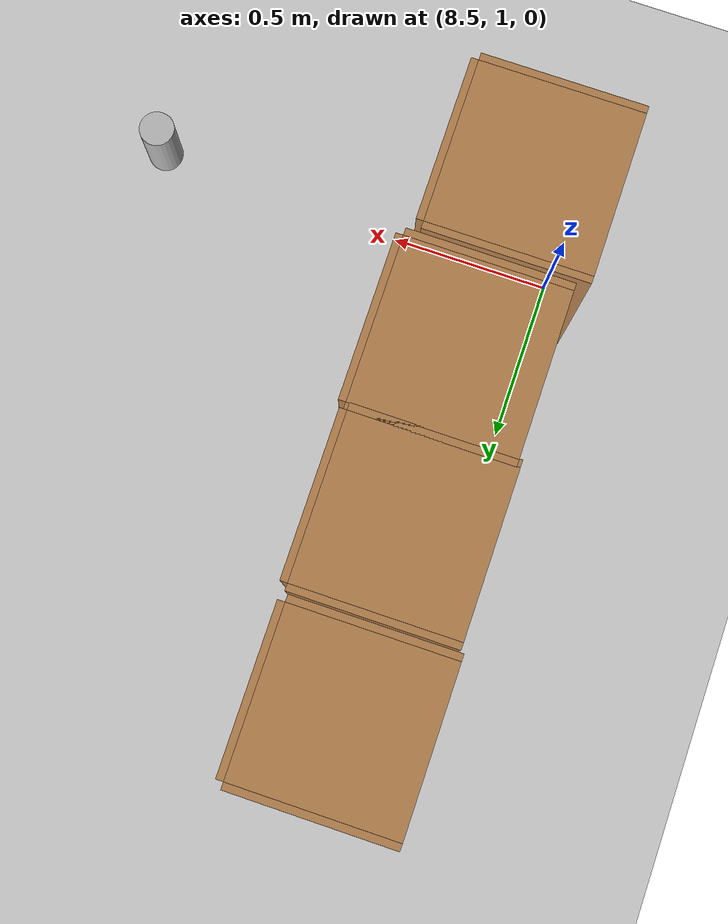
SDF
<sdf version="1.7">
 <world name="default">
  <model name="ground_plane">
   <static>1</static>
   <link name="link">
    <collision name="collision">
     <geometry><plane><normal>0 0 1</normal><size>100 100</size></plane></geometry>
     <surface>
      <contact><collide_bitmask>65535</collide_bitmask></contact>
      <friction><ode><mu>100</mu><mu2>50</mu2></ode></friction>
     </surface>
    </collision>
    <visual name="visual">
     <cast_shadows>0</cast_shadows>
     <geometry><plane><normal>0 0 1</normal><size>100 100</size></plane></geometry>
     <material>
      <script><uri>file://media/materials/scripts/gazebo.material</uri><name>Gazebo/Grey</name></script>
     </material>
    </visual>
   </link>
  </model>
  <model name="cabinet">
   <static>1</static>
   <link name="cabinet_bottom_plate">
    <inertial>
     <pose>0 0 -1 0 -0 0</pose>
     <inertia><ixx>2.05</ixx><ixy>0</ixy><ixz>0</ixz><iyy>2.05</iyy><iyz>0</iyz><izz>2.05</izz></inertia>
     <mass>25</mass>
    </inertial>
    <collision name="cabinet_bottom_plate_geom">
     <pose>0 0 0.01 0 -0 0</pose>
     <geometry><box><size>0.45 0.45 0.02</size></box></geometry>
    </collision>
    <visual name="cabinet_bottom_plate_geom_visual">
     <pose>0 0 0.01 0 -0 0</pose>
     <geometry><box><size>0.45 0.45 0.02</size></box></geometry>
     <material>
      <script><uri>file://media/materials/scripts/gazebo.material</uri><name>Gazebo/Wood</name></script>
     </material>
    </visual>
    <collision name="cabinet_bottom_plate_geom_cabinet_back_plate">
     <pose>0.235 0 0.51 0 -0 0</pose>
     <geometry><box><size>0.02 0.45 1.02</size></box></geometry>
    </collision>
    <visual name="cabinet_bottom_plate_geom_cabinet_back_plate_visual">
     <pose>0.235 0 0.51 0 -0 0</pose>
     <geometry><box><size>0.02 0.45 1.02</size></box></geometry>
     <material>
      <script><uri>file://media/materials/scripts/gazebo.material</uri><name>Gazebo/Wood</name></script>
     </material>
    </visual>
    <collision name="cabinet_bottom_plate_geom_cabinet_left_plate">
     <pose>0 0.235 0.51 0 -0 0</pose>
     <geometry><box><size>0.45 0.02 1.02</size></box></geometry>
    </collision>
    <visual name="cabinet_bottom_plate_geom_cabinet_left_plate_visual">
     <pose>0 0.235 0.51 0 -0 0</pose>
     <geometry><box><size>0.45 0.02 1.02</size></box></geometry>
     <material>
      <script><uri>file://media/materials/scripts/gazebo.material</uri><name>Gazebo/Wood</name></script>
     </material>
    </visual>
    <collision name="cabinet_bottom_plate_geom_cabinet_middle_plate">
     <pose>0 0 0.51 0 -0 0</pose>
     <geometry><box><size>0.45 0.45 0.02</size></box></geometry>
    </collision>
    <visual name="cabinet_bottom_plate_geom_cabinet_middle_plate_visual">
     <pose>0 0 0.51 0 -0 0</pose>
     <geometry><box><size>0.45 0.45 0.02</size></box></geometry>
     <material>
      <script><uri>file://media/materials/scripts/gazebo.material</uri><name>Gazebo/Wood</name></script>
     </material>
    </visual>
    <collision name="cabinet_bottom_plate_geom_cabinet_right_plate">
     <pose>0 -0.235 0.51 0 -0 0</pose>
     <geometry><box><size>0.45 0.02 1.02</size></box></geometry>
    </collision>
    <visual name="cabinet_bottom_plate_geom_cabinet_right_plate_visual">
     <pose>0 -0.235 0.51 0 -0 0</pose>
     <geometry><box><size>0.45 0.02 1.02</size></box></geometry>
     <material>
      <script><uri>file://media/materials/scripts/gazebo.material</uri><name>Gazebo/Wood</name></script>
     </material>
    </visual>
    <collision name="cabinet_bottom_plate_geom_cabinet_top_plate">
     <pose>0 0 1.01 0 -0 0</pose>
     <geometry><box><size>0.45 0.45 0.02</size></box></geometry>
    </collision>
    <visual name="cabinet_bottom_plate_geom_cabinet_top_plate_visual">
     <pose>0 0 1.01 0 -0 0</pose>
     <geometry><box><size>0.45 0.45 0.02</size></box></geometry>
     <material>
      <script><uri>file://media/materials/scripts/gazebo.material</uri><name>Gazebo/Wood</name></script>
     </material>
    </visual>
   </link>
   <pose>8.66359 2.46488 0 0 -0 0</pose>
  </model>
  <model name="cabinet_0">
   <static>1</static>
   <link name="cabinet_bottom_plate">
    <inertial>
     <pose>0 0 -1 0 -0 0</pose>
     <inertia><ixx>2.05</ixx><ixy>0</ixy><ixz>0</ixz><iyy>2.05</iyy><iyz>0</iyz><izz>2.05</izz></inertia>
     <mass>25</mass>
    </inertial>
    <collision name="cabinet_bottom_plate_geom">
     <pose>0 0 0.01 0 -0 0</pose>
     <geometry><box><size>0.45 0.45 0.02</size></box></geometry>
    </collision>
    <visual name="cabinet_bottom_plate_geom_visual">
     <pose>0 0 0.01 0 -0 0</pose>
     <geometry><box><size>0.45 0.45 0.02</size></box></geometry>
     <material>
      <script><uri>file://media/materials/scripts/gazebo.material</uri><name>Gazebo/Wood</name></script>
     </material>
    </visual>
    <collision name="cabinet_bottom_plate_geom_cabinet_back_plate">
     <pose>0.235 0 0.51 0 -0 0</pose>
     <geometry><box><size>0.02 0.45 1.02</size></box></geometry>
    </collision>
    <visual name="cabinet_bottom_plate_geom_cabinet_back_plate_visual">
     <pose>0.235 0 0.51 0 -0 0</pose>
     <geometry><box><size>0.02 0.45 1.02</size></box></geometry>
     <material>
      <script><uri>file://media/materials/scripts/gazebo.material</uri><name>Gazebo/Wood</name></script>
     </material>
    </visual>
    <collision name="cabinet_bottom_plate_geom_cabinet_left_plate">
     <pose>0 0.235 0.51 0 -0 0</pose>
     <geometry><box><size>0.45 0.02 1.02</size></box></geometry>
    </collision>
    <visual name="cabinet_bottom_plate_geom_cabinet_left_plate_visual">
     <pose>0 0.235 0.51 0 -0 0</pose>
     <geometry><box><size>0.45 0.02 1.02</size></box></geometry>
     <material>
      <script><uri>file://media/materials/scripts/gazebo.material</uri><name>Gazebo/Wood</name></script>
     </material>
    </visual>
    <collision name="cabinet_bottom_plate_geom_cabinet_middle_plate">
     <pose>0 0 0.51 0 -0 0</pose>
     <geometry><box><size>0.45 0.45 0.02</size></box></geometry>
    </collision>
    <visual name="cabinet_bottom_plate_geom_cabinet_middle_plate_visual">
     <pose>0 0 0.51 0 -0 0</pose>
     <geometry><box><size>0.45 0.45 0.02</size></box></geometry>
     <material>
      <script><uri>file://media/materials/scripts/gazebo.material</uri><name>Gazebo/Wood</name></script>
     </material>
    </visual>
    <collision name="cabinet_bottom_plate_geom_cabinet_right_plate">
     <pose>0 -0.235 0.51 0 -0 0</pose>
     <geometry><box><size>0.45 0.02 1.02</size></box></geometry>
    </collision>
    <visual name="cabinet_bottom_plate_geom_cabinet_right_plate_visual">
     <pose>0 -0.235 0.51 0 -0 0</pose>
     <geometry><box><size>0.45 0.02 1.02</size></box></geometry>
     <material>
      <script><uri>file://media/materials/scripts/gazebo.material</uri><name>Gazebo/Wood</name></script>
     </material>
    </visual>
    <collision name="cabinet_bottom_plate_geom_cabinet_top_plate">
     <pose>0 0 1.01 0 -0 0</pose>
     <geometry><box><size>0.45 0.45 0.02</size></box></geometry>
    </collision>
    <visual name="cabinet_bottom_plate_geom_cabinet_top_plate_visual">
     <pose>0 0 1.01 0 -0 0</pose>
     <geometry><box><size>0.45 0.45 0.02</size></box></geometry>
     <material>
      <script><uri>file://media/materials/scripts/gazebo.material</uri><name>Gazebo/Wood</name></script>
     </material>
    </visual>
   </link>
   <pose>8.67328 1.97002 0 0 -0 0</pose>
  </model>
  <model name="cabinet_1">
   <static>1</static>
   <link name="cabinet_bottom_plate">
    <inertial>
     <pose>0 0 -1 0 -0 0</pose>
     <inertia><ixx>2.05</ixx><ixy>0</ixy><ixz>0</ixz><iyy>2.05</iyy><iyz>0</iyz><izz>2.05</izz></inertia>
     <mass>25</mass>
    </inertial>
    <collision name="cabinet_bottom_plate_geom">
     <pose>0 0 0.01 0 -0 0</pose>
     <geometry><box><size>0.45 0.45 0.02</size></box></geometry>
    </collision>
    <visual name="cabinet_bottom_plate_geom_visual">
     <pose>0 0 0.01 0 -0 0</pose>
     <geometry><box><size>0.45 0.45 0.02</size></box></geometry>
     <material>
      <script><uri>file://media/materials/scripts/gazebo.material</uri><name>Gazebo/Wood</name></script>
     </material>
    </visual>
    <collision name="cabinet_bottom_plate_geom_cabinet_back_plate">
     <pose>0.235 0 0.51 0 -0 0</pose>
     <geometry><box><size>0.02 0.45 1.02</size></box></geometry>
    </collision>
    <visual name="cabinet_bottom_plate_geom_cabinet_back_plate_visual">
     <pose>0.235 0 0.51 0 -0 0</pose>
     <geometry><box><size>0.02 0.45 1.02</size></box></geometry>
     <material>
      <script><uri>file://media/materials/scripts/gazebo.material</uri><name>Gazebo/Wood</name></script>
     </material>
    </visual>
    <collision name="cabinet_bottom_plate_geom_cabinet_left_plate">
     <pose>0 0.235 0.51 0 -0 0</pose>
     <geometry><box><size>0.45 0.02 1.02</size></box></geometry>
    </collision>
    <visual name="cabinet_bottom_plate_geom_cabinet_left_plate_visual">
     <pose>0 0.235 0.51 0 -0 0</pose>
     <geometry><box><size>0.45 0.02 1.02</size></box></geometry>
     <material>
      <script><uri>file://media/materials/scripts/gazebo.material</uri><name>Gazebo/Wood</name></script>
     </material>
    </visual>
    <collision name="cabinet_bottom_plate_geom_cabinet_middle_plate">
     <pose>0 0 0.51 0 -0 0</pose>
     <geometry><box><size>0.45 0.45 0.02</size></box></geometry>
    </collision>
    <visual name="cabinet_bottom_plate_geom_cabinet_middle_plate_visual">
     <pose>0 0 0.51 0 -0 0</pose>
     <geometry><box><size>0.45 0.45 0.02</size></box></geometry>
     <material>
      <script><uri>file://media/materials/scripts/gazebo.material</uri><name>Gazebo/Wood</name></script>
     </material>
    </visual>
    <collision name="cabinet_bottom_plate_geom_cabinet_right_plate">
     <pose>0 -0.235 0.51 0 -0 0</pose>
     <geometry><box><size>0.45 0.02 1.02</size></box></geometry>
    </collision>
    <visual name="cabinet_bottom_plate_geom_cabinet_right_plate_visual">
     <pose>0 -0.235 0.51 0 -0 0</pose>
     <geometry><box><size>0.45 0.02 1.02</size></box></geometry>
     <material>
      <script><uri>file://media/materials/scripts/gazebo.material</uri><name>Gazebo/Wood</name></script>
     </material>
    </visual>
    <collision name="cabinet_bottom_plate_geom_cabinet_top_plate">
     <pose>0 0 1.01 0 -0 0</pose>
     <geometry><box><size>0.45 0.45 0.02</size></box></geometry>
    </collision>
    <visual name="cabinet_bottom_plate_geom_cabinet_top_plate_visual">
     <pose>0 0 1.01 0 -0 0</pose>
     <geometry><box><size>0.45 0.45 0.02</size></box></geometry>
     <material>
      <script><uri>file://media/materials/scripts/gazebo.material</uri><name>Gazebo/Wood</name></script>
     </material>
    </visual>
   </link>
   <pose>8.68244 1.50231 0 0 -0 0</pose>
  </model>
  <model name="cabinet_2">
   <static>1</static>
   <link name="cabinet_bottom_plate">
    <inertial>
     <pose>0 0 -1 0 -0 0</pose>
     <inertia><ixx>2.05</ixx><ixy>0</ixy><ixz>0</ixz><iyy>2.05</iyy><iyz>0</iyz><izz>2.05</izz></inertia>
     <mass>25</mass>
    </inertial>
    <collision name="cabinet_bottom_plate_geom">
     <pose>0 0 0.01 0 -0 0</pose>
     <geometry><box><size>0.45 0.45 0.02</size></box></geometry>
    </collision>
    <visual name="cabinet_bottom_plate_geom_visual">
     <pose>0 0 0.01 0 -0 0</pose>
     <geometry><box><size>0.45 0.45 0.02</size></box></geometry>
     <material>
      <script><uri>file://media/materials/scripts/gazebo.material</uri><name>Gazebo/Wood</name></script>
     </material>
    </visual>
    <collision name="cabinet_bottom_plate_geom_cabinet_back_plate">
     <pose>0.235 0 0.51 0 -0 0</pose>
     <geometry><box><size>0.02 0.45 1.02</size></box></geometry>
    </collision>
    <visual name="cabinet_bottom_plate_geom_cabinet_back_plate_visual">
     <pose>0.235 0 0.51 0 -0 0</pose>
     <geometry><box><size>0.02 0.45 1.02</size></box></geometry>
     <material>
      <script><uri>file://media/materials/scripts/gazebo.material</uri><name>Gazebo/Wood</name></script>
     </material>
    </visual>
    <collision name="cabinet_bottom_plate_geom_cabinet_left_plate">
     <pose>0 0.235 0.51 0 -0 0</pose>
     <geometry><box><size>0.45 0.02 1.02</size></box></geometry>
    </collision>
    <visual name="cabinet_bottom_plate_geom_cabinet_left_plate_visual">
     <pose>0 0.235 0.51 0 -0 0</pose>
     <geometry><box><size>0.45 0.02 1.02</size></box></geometry>
     <material>
      <script><uri>file://media/materials/scripts/gazebo.material</uri><name>Gazebo/Wood</name></script>
     </material>
    </visual>
    <collision name="cabinet_bottom_plate_geom_cabinet_middle_plate">
     <pose>0 0 0.51 0 -0 0</pose>
     <geometry><box><size>0.45 0.45 0.02</size></box></geometry>
    </collision>
    <visual name="cabinet_bottom_plate_geom_cabinet_middle_plate_visual">
     <pose>0 0 0.51 0 -0 0</pose>
     <geometry><box><size>0.45 0.45 0.02</size></box></geometry>
     <material>
      <script><uri>file://media/materials/scripts/gazebo.material</uri><name>Gazebo/Wood</name></script>
     </material>
    </visual>
    <collision name="cabinet_bottom_plate_geom_cabinet_right_plate">
     <pose>0 -0.235 0.51 0 -0 0</pose>
     <geometry><box><size>0.45 0.02 1.02</size></box></geometry>
    </collision>
    <visual name="cabinet_bottom_plate_geom_cabinet_right_plate_visual">
     <pose>0 -0.235 0.51 0 -0 0</pose>
     <geometry><box><size>0.45 0.02 1.02</size></box></geometry>
     <material>
      <script><uri>file://media/materials/scripts/gazebo.material</uri><name>Gazebo/Wood</name></script>
     </material>
    </visual>
    <collision name="cabinet_bottom_plate_geom_cabinet_top_plate">
     <pose>0 0 1.01 0 -0 0</pose>
     <geometry><box><size>0.45 0.45 0.02</size></box></geometry>
    </collision>
    <visual name="cabinet_bottom_plate_geom_cabinet_top_plate_visual">
     <pose>0 0 1.01 0 -0 0</pose>
     <geometry><box><size>0.45 0.45 0.02</size></box></geometry>
     <material>
      <script><uri>file://media/materials/scripts/gazebo.material</uri><name>Gazebo/Wood</name></script>
     </material>
    </visual>
   </link>
   <pose>8.64588 1.00133 0 0 -0 0</pose>
  </model>
  <model name="beer_0">
   <link name="link">
    <pose>0 0 0.115 0 -0 0</pose>
    <inertial>
     <mass>0.39</mass>
     <inertia><ixx>0.00058</ixx><ixy>0</ixy><ixz>0</ixz><iyy>0.00058</iyy><iyz>0</iyz><izz>0.00019</izz></inertia>
    </inertial>
    <collision name="collision">
     <geometry><cylinder><radius>0.055</radius><length>0.23</length></cylinder></geometry>
    </collision>
    <visual name="visual">
     <geometry><cylinder><radius>0.055</radius><length>0.23</length></cylinder></geometry>
     <material>
      <script>
       <uri>model://beer/materials/scripts</uri>
       <uri>model://beer/materials/textures</uri>
       <name>Beer/Diffuse</name>
      </script>
     </material>
    </visual>
   </link>
   <pose>9.79618 0.964232 -7e-06 -1e-06 -0 -1.5e-05</pose>
  </model>
 </world>
</sdf>
